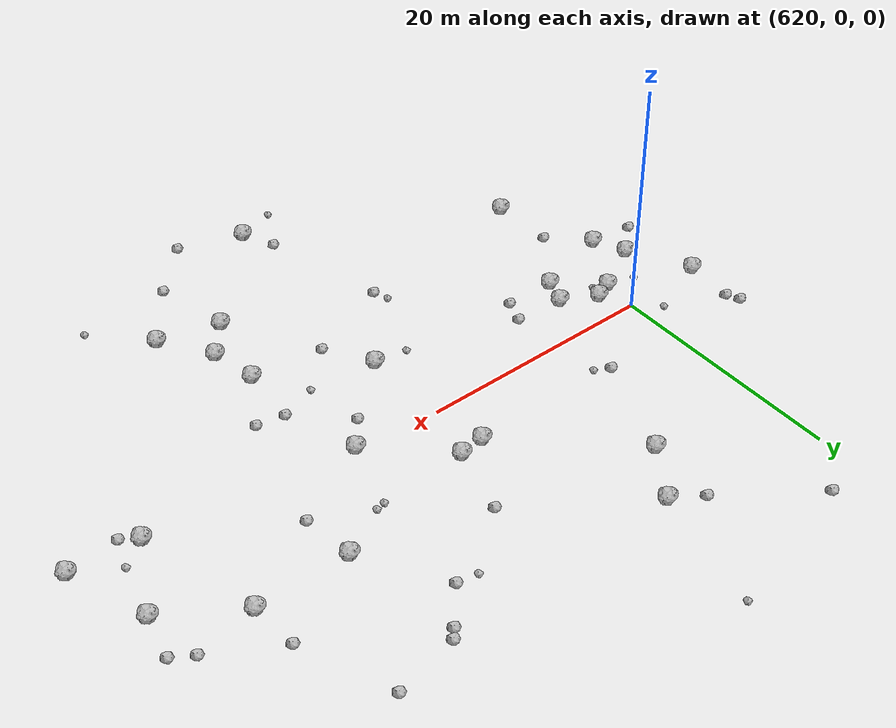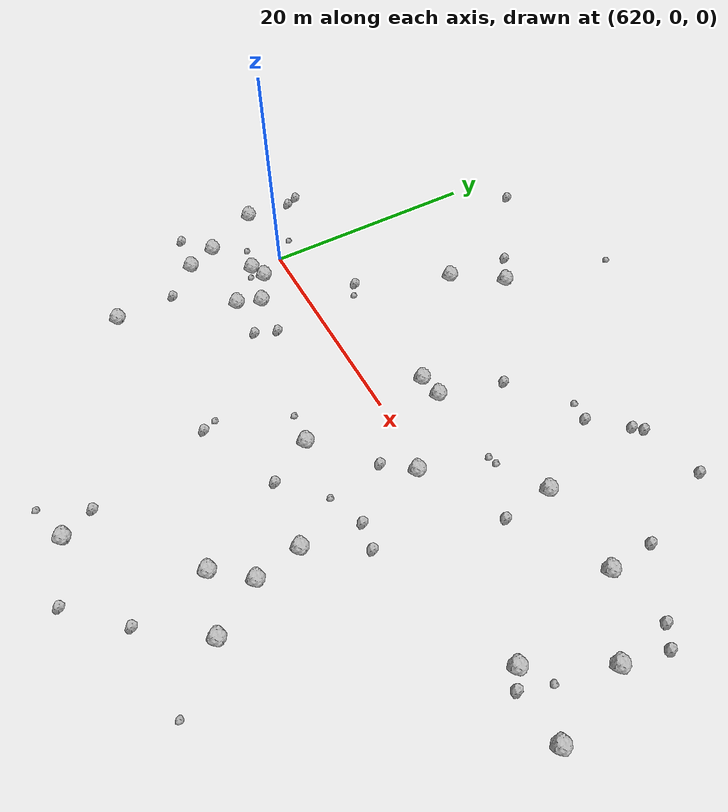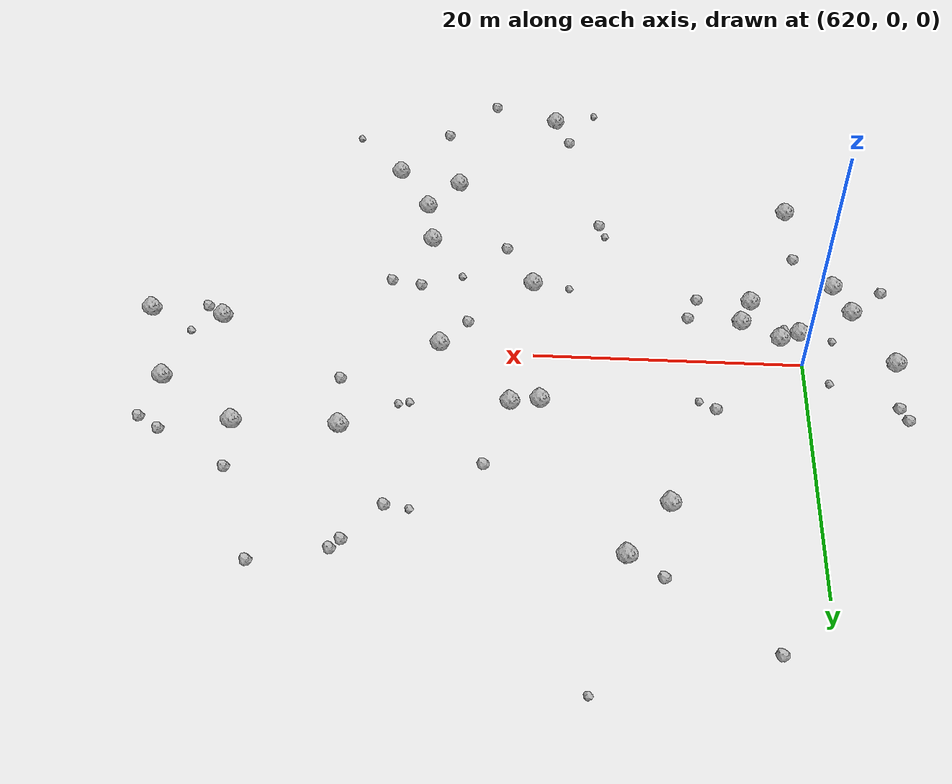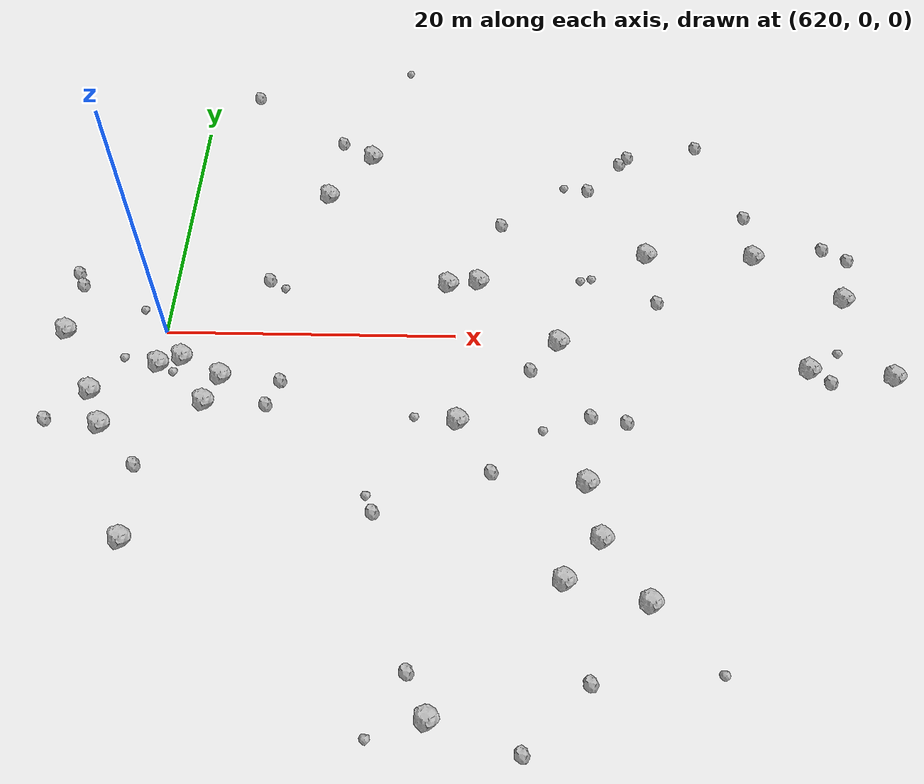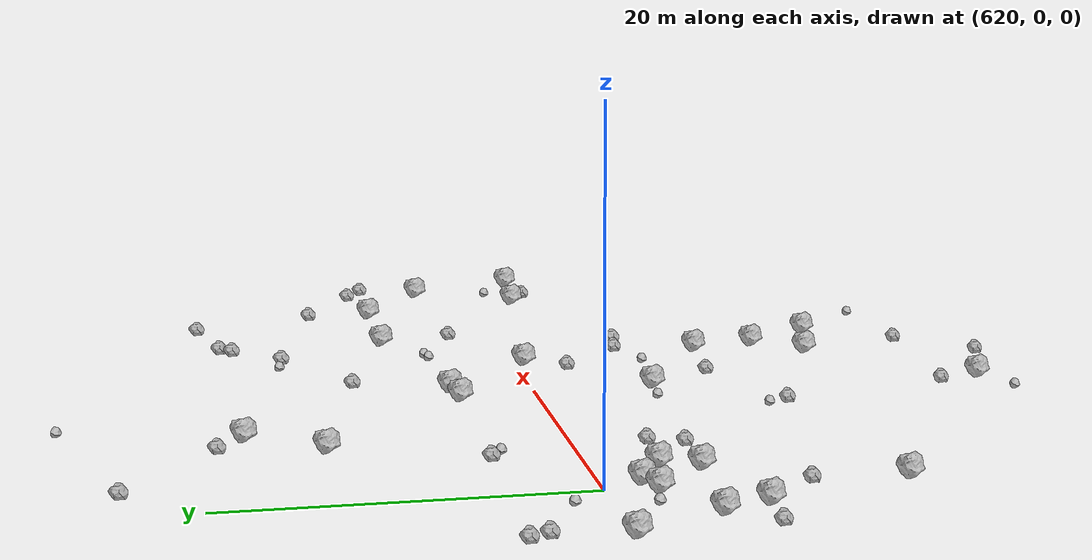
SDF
<sdf version="1.6">
 <world name="default">
  <include><uri>model://sun</uri></include>
  <model name="rock1_16_3">
   <include><uri>model://rock1</uri><pose>667.2789117901668 3.509027703949023 0.5 0 0 0</pose></include>
  </model>
  <model name="rock1_16_4">
   <include><uri>model://rock1</uri><pose>663.9486540785584 -2.718987977807558 0.5 0 0 0</pose></include>
  </model>
  <model name="rock1_16_5">
   <include><uri>model://rock1</uri><pose>640.3503514225736 -7.2320248513341205 0.5 0 0 0</pose></include>
  </model>
  <model name="rock1_16_6">
   <include><uri>model://rock1</uri><pose>639.1593638043964 -27.134742439260872 0.5 0 0 0</pose></include>
  </model>
  <model name="rock1_16_7">
   <include><uri>model://rock1</uri><pose>623.5218261399529 -5.99417496119284 0.5 0 0 0</pose></include>
  </model>
  <model name="rock1_16_8">
   <include><uri>model://rock1</uri><pose>620.0242143890564 -16.261554604280708 0.5 0 0 0</pose></include>
  </model>
  <model name="rock1_16_9">
   <include><uri>model://rock1</uri><pose>669.5669844718145 -3.217094296439683 0.5 0 0 0</pose></include>
  </model>
  <model name="rock1_16_10">
   <include><uri>model://rock1</uri><pose>617.0180939605194 -7.920816216485708 0.5 0 0 0</pose></include>
  </model>
  <model name="rock1_16_11">
   <include><uri>model://rock1</uri><pose>630.1538950199894 13.1126252038637 0.5 0 0 0</pose></include>
  </model>
  <model name="rock1_16_12">
   <include><uri>model://rock1</uri><pose>621.5112245999671 -2.3211946064181923 0.5 0 0 0</pose></include>
  </model>
  <model name="rock1_16_13">
   <include><uri>model://rock1</uri><pose>653.6737314997929 7.4591347982319505 0.5 0 0 0</pose></include>
  </model>
  <model name="rock1_16_14">
   <include><uri>model://rock1</uri><pose>639.398772173341 4.458528300900625 0.5 0 0 0</pose></include>
  </model>
  <model name="rock1_16_15">
   <include><uri>model://rock1</uri><pose>652.0618154316847 -19.937372520353918 0.5 0 0 0</pose></include>
  </model>
  <model name="rock1_16_16">
   <include><uri>model://rock1</uri><pose>624.3409397275146 -3.8586791165148036 0.5 0 0 0</pose></include>
  </model>
  <model name="rock1_16_17">
   <include><uri>model://rock1</uri><pose>641.5453165831093 4.757294675935277 0.5 0 0 0</pose></include>
  </model>
  <model name="rock1_16_18">
   <include><uri>model://rock1</uri><pose>647.1076486050763 -0.6401298367770707 0.5 0 0 0</pose></include>
  </model>
  <model name="rock1_16_19">
   <include><uri>model://rock1</uri><pose>620.00649428359 -2.9175936875894557 0.5 0 0 0</pose></include>
  </model>
  <model name="rock1_16_20">
   <include><uri>model://rock1</uri><pose>648.6452353303542 -11.813864362229616 0.5 0 0 0</pose></include>
  </model>
  <model name="rock1_16_21">
   <include><uri>model://rock1</uri><pose>633.1508686150754 17.391595878586934 0.5 0 0 0</pose></include>
  </model>
  <model name="rock1_16_22">
   <include><uri>model://rock1</uri><pose>615.8344881178082 -5.230814833406125 0.5 0 0 0</pose></include>
  </model>
  <model name="rock1_16_23">
   <include><uri>model://rock1</uri><pose>649.3768457168981 -15.747632040149588 0.5 0 0 0</pose></include>
  </model>
  <model name="rock1_16_24">
   <include><uri>model://rock1</uri><pose>647.0065318290998 -18.590596816946835 0.5 0 0 0</pose></include>
  </model>
  <model name="rock1_16_25">
   <include><uri>model://rock1</uri><pose>661.409872101038 7.419376736647941 0.5 0 0 0</pose></include>
  </model>
  <model name="rock1_16_26">
   <include><uri>model://rock1</uri><pose>613.1373362208249 -0.18147227792952947 0.5 0 0 0</pose></include>
  </model>
  <model name="rock2_16_0">
   <include><uri>model://rock2</uri><pose>628.3782215064746 -4.1463333830272475 0.3 0 0 0</pose></include>
  </model>
  <model name="rock2_16_1">
   <include><uri>model://rock2</uri><pose>661.1636202550254 11.443718651457445 0.3 0 0 0</pose></include>
  </model>
  <model name="rock2_16_2">
   <include><uri>model://rock2</uri><pose>652.8660777313407 17.751357312654847 0.3 0 0 0</pose></include>
  </model>
  <model name="rock2_16_3">
   <include><uri>model://rock2</uri><pose>665.2369991927279 -3.674823898033054 0.3 0 0 0</pose></include>
  </model>
  <model name="rock2_16_4">
   <include><uri>model://rock2</uri><pose>635.2292291505698 -14.089946942624547 0.3 0 0 0</pose></include>
  </model>
  <model name="rock2_16_5">
   <include><uri>model://rock2</uri><pose>644.3989882820135 -28.971426198010796 0.3 0 0 0</pose></include>
  </model>
  <model name="rock2_16_6">
   <include><uri>model://rock2</uri><pose>626.6527781789814 4.709724990365835 0.3 0 0 0</pose></include>
  </model>
  <model name="rock2_16_7">
   <include><uri>model://rock2</uri><pose>613.4282792966196 4.018307347990266 0.3 0 0 0</pose></include>
  </model>
  <model name="rock2_16_8">
   <include><uri>model://rock2</uri><pose>643.124854165647 10.390155559418233 0.3 0 0 0</pose></include>
  </model>
  <model name="rock2_16_9">
   <include><uri>model://rock2</uri><pose>648.3097993204719 -24.908278945963083 0.3 0 0 0</pose></include>
  </model>
  <model name="rock2_16_10">
   <include><uri>model://rock2</uri><pose>649.6572477449084 14.106413908154472 0.3 0 0 0</pose></include>
  </model>
  <model name="rock2_16_11">
   <include><uri>model://rock2</uri><pose>637.8881366090466 -24.399561557322713 0.3 0 0 0</pose></include>
  </model>
  <model name="rock2_16_12">
   <include><uri>model://rock2</uri><pose>630.7189506971459 18.965048648877506 0.3 0 0 0</pose></include>
  </model>
  <model name="rock2_16_13">
   <include><uri>model://rock2</uri><pose>654.10266707036 3.082025569383262 0.3 0 0 0</pose></include>
  </model>
  <model name="rock2_16_14">
   <include><uri>model://rock2</uri><pose>619.8048528729157 -10.903675713807111 0.3 0 0 0</pose></include>
  </model>
  <model name="rock2_16_15">
   <include><uri>model://rock2</uri><pose>649.0697745951279 -6.716903176145767 0.3 0 0 0</pose></include>
  </model>
  <model name="rock2_16_16">
   <include><uri>model://rock2</uri><pose>627.6285682768184 -6.097968312202749 0.3 0 0 0</pose></include>
  </model>
  <model name="rock2_16_17">
   <include><uri>model://rock2</uri><pose>642.5695974851036 -11.070452933416718 0.3 0 0 0</pose></include>
  </model>
  <model name="rock2_16_18">
   <include><uri>model://rock2</uri><pose>612.9192493583862 5.112851053033054 0.3 0 0 0</pose></include>
  </model>
  <model name="rock2_16_19">
   <include><uri>model://rock2</uri><pose>651.397912736388 -7.135797091314664 0.3 0 0 0</pose></include>
  </model>
  <model name="rock2_16_20">
   <include><uri>model://rock2</uri><pose>623.4937105342893 24.221192800809376 0.3 0 0 0</pose></include>
  </model>
  <model name="rock2_16_21">
   <include><uri>model://rock2</uri><pose>658.2361261817315 18.919319701644973 0.3 0 0 0</pose></include>
  </model>
  <model name="rock2_16_22">
   <include><uri>model://rock2</uri><pose>666.4928472368501 8.326331231837386 0.3 0 0 0</pose></include>
  </model>
  <model name="rock2_16_23">
   <include><uri>model://rock2</uri><pose>613.3010171668603 -7.503809029074834 0.3 0 0 0</pose></include>
  </model>
  <model name="rock2_16_24">
   <include><uri>model://rock2</uri><pose>645.1382597323948 -2.975917607645158 0.3 0 0 0</pose></include>
  </model>
  <model name="rock2_16_25">
   <include><uri>model://rock2</uri><pose>668.1348182187187 7.288670144010837 0.3 0 0 0</pose></include>
  </model>
  <model name="rock2_16_26">
   <include><uri>model://rock2</uri><pose>652.2061265744778 17.003491028389128 0.3 0 0 0</pose></include>
  </model>
  <model name="rock3_16_0">
   <include><uri>model://rock3</uri><pose>627.8068118226194 3.963540359252903 0.2 0 0 0</pose></include>
  </model>
  <model name="rock3_16_1">
   <include><uri>model://rock3</uri><pose>645.900904371835 -7.873637520191657 0.2 0 0 0</pose></include>
  </model>
  <model name="rock3_16_2">
   <include><uri>model://rock3</uri><pose>666.0751220884043 -1.1995431431393335 0.2 0 0 0</pose></include>
  </model>
  <model name="rock3_16_3">
   <include><uri>model://rock3</uri><pose>634.7187256037137 -12.91314778812648 0.2 0 0 0</pose></include>
  </model>
  <model name="rock3_16_4">
   <include><uri>model://rock3</uri><pose>617.5511801869333 -2.365514900145442 0.2 0 0 0</pose></include>
  </model>
  <model name="rock3_16_5">
   <include><uri>model://rock3</uri><pose>648.7876955166104 5.029570809801378 0.2 0 0 0</pose></include>
  </model>
  <model name="rock3_16_6">
   <include><uri>model://rock3</uri><pose>621.0277342739732 -3.4971173601727727 0.2 0 0 0</pose></include>
  </model>
  <model name="rock3_16_7">
   <include><uri>model://rock3</uri><pose>637.475097158439 -6.917663119330438 0.2 0 0 0</pose></include>
  </model>
  <model name="rock3_16_8">
   <include><uri>model://rock3</uri><pose>649.5717561566071 5.212714864149113 0.2 0 0 0</pose></include>
  </model>
  <model name="rock3_16_9">
   <include><uri>model://rock3</uri><pose>635.5461538643356 27.486575189023675 0.2 0 0 0</pose></include>
  </model>
  <model name="rock3_16_10">
   <include><uri>model://rock3</uri><pose>655.9138480451222 -24.285540871558062 0.2 0 0 0</pose></include>
  </model>
  <model name="rock3_16_11">
   <include><uri>model://rock3</uri><pose>635.7756815621359 -28.27575437093084 0.2 0 0 0</pose></include>
  </model>
  <model name="rock3_16_12">
   <include><uri>model://rock3</uri><pose>618.2031652225012 1.8275051824698565 0.2 0 0 0</pose></include>
  </model>
  <model name="rock3_16_13">
   <include><uri>model://rock3</uri><pose>647.8706438556657 14.32567766820592 0.2 0 0 0</pose></include>
  </model>
 </world>
</sdf>
